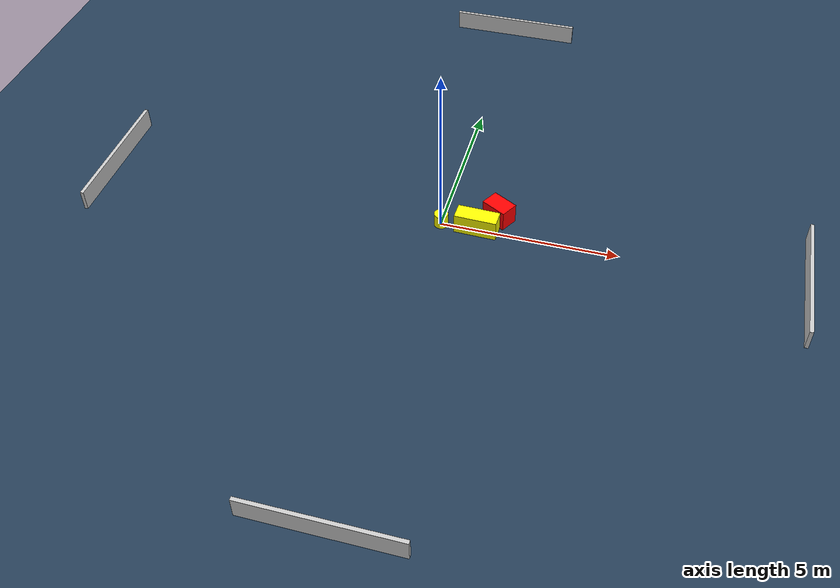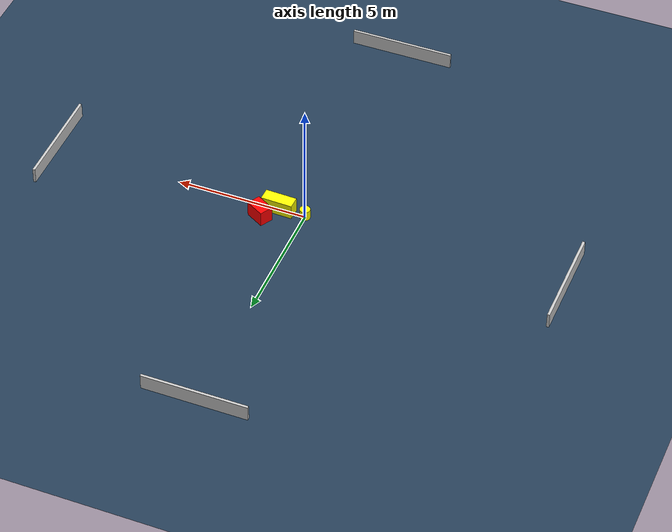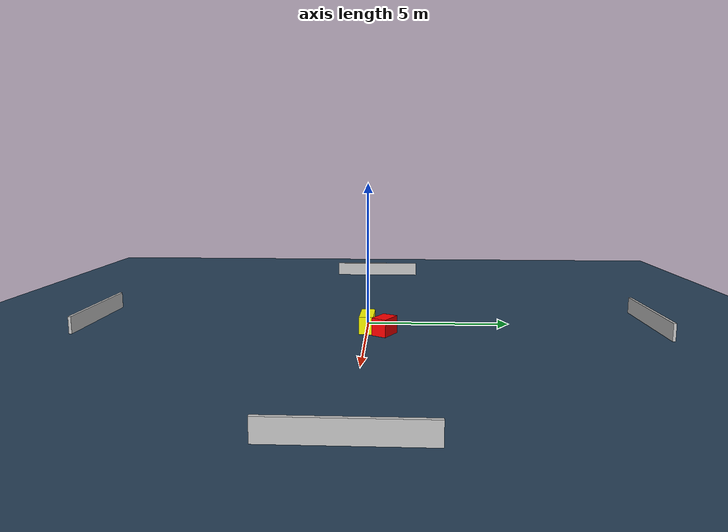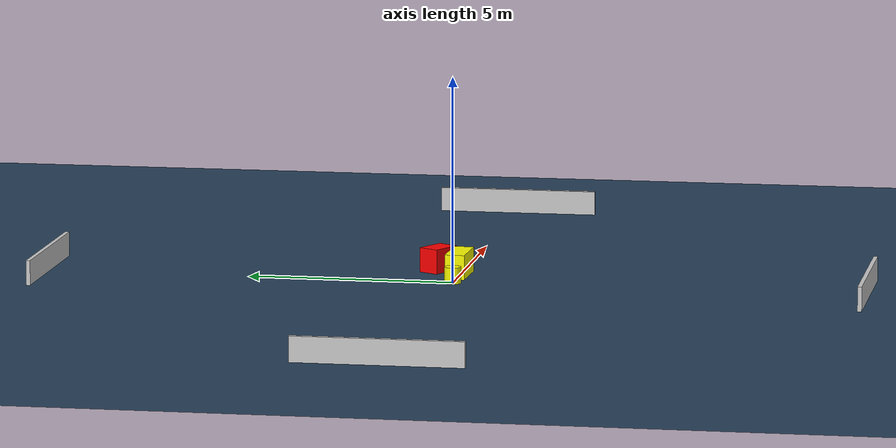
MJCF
<?xml version="1.0" ?>
<mujoco model="generated_environment">
  <option timestep="0.01" integrator="RK4" cone="elliptic"/>
  <default>
    <geom density="1"/>
  </default>
  <asset>
    <texture builtin="gradient" height="3072" name="skybox" rgb1="0.3 0.5 0.7" rgb2="0 0 0" type="skybox" width="512"/>
    <texture builtin="checker" height="300" name="groundplane" rgb1="0.2 0.3 0.4" rgb2="0.1 0.2 0.3" type="2d" width="300"/>
    <material name="groundplane" reflectance="0.2" texrepeat="5 5" texture="groundplane"/>
  </asset>
  <worldbody>
    <light dir="0 0 -1" directional="true" pos="0 0 1.5"/>
    <geom condim="3" friction="0.5 0.005 0.001" material="groundplane" name="floor" pos="0 0 0" size="0 0 0.05" type="plane"/>
    <body name="walls">
      <geom name="wall_1" condim="4" pos="-10.0 0.0 0.3" rgba="0.800000011920929 0.800000011920929 0.800000011920929 1.0" size="0.05 2.0 0.3" type="box"/>
      <geom name="wall_2" condim="4" pos="10.0 0.0 0.3" rgba="0.800000011920929 0.800000011920929 0.800000011920929 1.0" size="0.05 2.0 0.3" type="box"/>
      <geom name="wall_3" condim="4" pos="0.0 -10.0 0.3" rgba="0.800000011920929 0.800000011920929 0.800000011920929 1.0" size="2.0 0.05 0.3" type="box"/>
      <geom name="wall_4" condim="4" pos="0.0 10.0 0.3" rgba="0.800000011920929 0.800000011920929 0.800000011920929 1.0" size="2.0 0.05 0.3" type="box"/>
    </body>
    <body name="robot">
      <joint name="joint_x" type="slide" pos="0 0 0" axis="1 0 0"/>
      <joint name="joint_y" type="slide" pos="0 0 0" axis="0 1 0"/>
      <geom name="robot" type="cylinder" pos="0.0 0.0 0.2" size="0.2 0.2 0.0" mass="5.0" friction="1.0 0.005 0.0001" condim="4" rgba="1.0 1.0 0.0 1.0"/>
    </body>
    <body name="obstacle_1_movable">
      <geom name="obstacle_1_movable" condim="4" pos="1.0266602410827759 0.013411906243831966 0.3" euler="0 0 88.24691000240949" friction="0.0 0.005 0.001" rgba="1.0 1.0 0.0 1.0" size="0.23980654844655125 0.6006525104333332 0.3" type="box" mass="0.1"/>
      <joint type="free"/>
    </body>
    <body name="obstacle_2_static">
      <geom name="obstacle_2_static" condim="4" pos="1.5238854241226294 0.6169565595338887 0.3" euler="0 0 240.51769378589506" friction="0.0 0.005 0.001" rgba="1.0 0.0 0.0 1.0" size="0.2631286079852566 0.3863332021181992 0.3" type="box"/>
    </body>
  </worldbody>
  <actuator>
    <motor name="actuator_x" joint="joint_x" gear="1" ctrlrange="-1 1"/>
    <motor name="actuator_y" joint="joint_y" gear="1" ctrlrange="-1 1"/>
  </actuator>
</mujoco>
